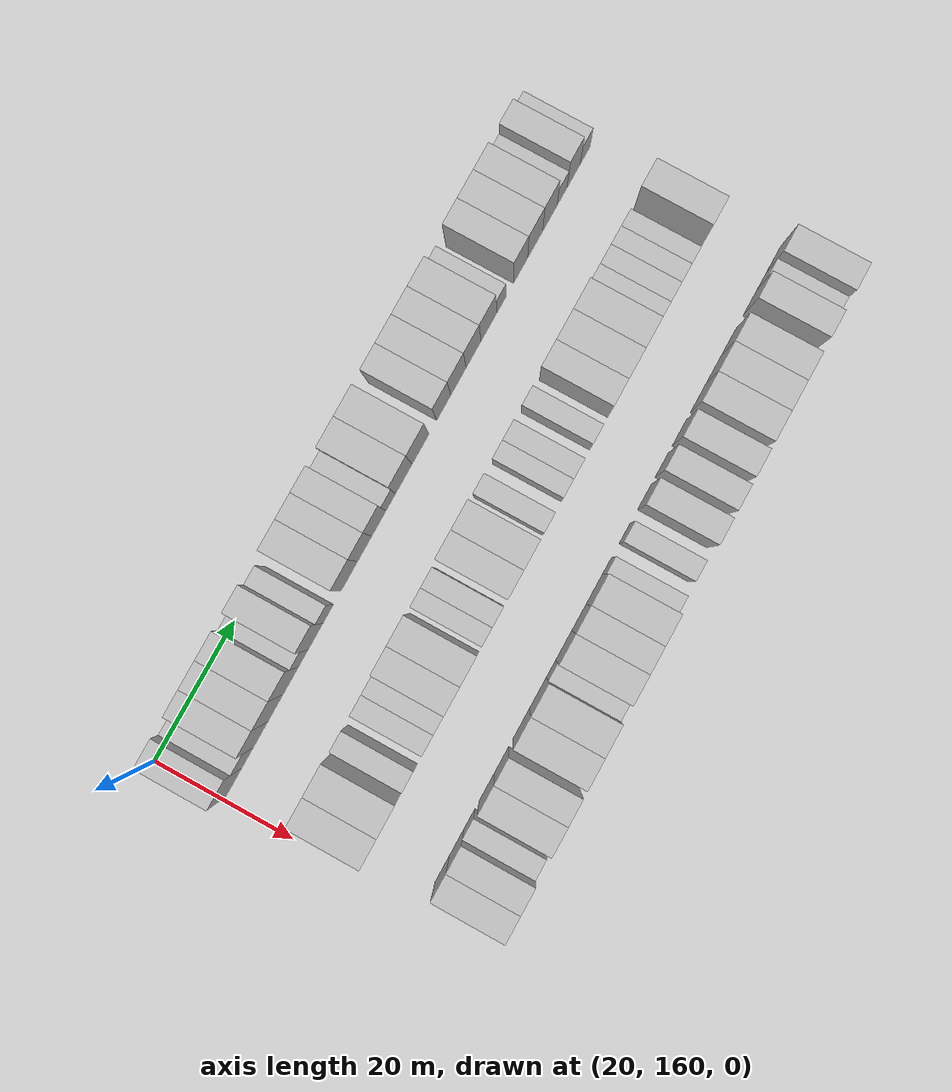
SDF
<sdf version="1.6">
 <world name="default">
  <model name="building_122">
   <static>1</static>
   <pose>25.0000 162.5644 0 0.000000 0.000000 0.000000</pose>
   <link name="link">
    <pose>0 0 4.50 0 0 0</pose>
    <collision name="collision"><geometry><box><size>10.0000 4.0477 9.0000</size></box></geometry></collision>
    <visual name="visual">
     <cast_shadows>0</cast_shadows>
     <geometry><box><size>10.0000 4.0477 9.0000</size></box></geometry>
     <material>
      <script>
       <uri>model://HANNAS_wall/materials/scripts</uri>
       <uri>model://HANNAS_wall/materials/textures</uri>
       <name>vrc/HANNAS_wall</name>
      </script>
     </material>
    </visual>
   </link>
  </model>
  <model name="building_123">
   <static>1</static>
   <pose>25.0000 166.0023 0 0.000000 0.000000 0.000000</pose>
   <link name="link">
    <pose>0 0 3.00 0 0 0</pose>
    <collision name="collision"><geometry><box><size>10.0000 2.8281 6.0000</size></box></geometry></collision>
    <visual name="visual">
     <cast_shadows>0</cast_shadows>
     <geometry><box><size>10.0000 2.8281 6.0000</size></box></geometry>
     <material>
      <script>
       <uri>model://HANNAS_wall/materials/scripts</uri>
       <uri>model://HANNAS_wall/materials/textures</uri>
       <name>vrc/HANNAS_wall</name>
      </script>
     </material>
    </visual>
   </link>
  </model>
  <model name="building_124">
   <static>1</static>
   <pose>25.0000 169.2462 0 0.000000 0.000000 0.000000</pose>
   <link name="link">
    <pose>0 0 4.50 0 0 0</pose>
    <collision name="collision"><geometry><box><size>10.0000 3.6597 9.0000</size></box></geometry></collision>
    <visual name="visual">
     <cast_shadows>0</cast_shadows>
     <geometry><box><size>10.0000 3.6597 9.0000</size></box></geometry>
     <material>
      <script>
       <uri>model://HANNAS_wall/materials/scripts</uri>
       <uri>model://HANNAS_wall/materials/textures</uri>
       <name>vrc/HANNAS_wall</name>
      </script>
     </material>
    </visual>
   </link>
  </model>
  <model name="building_125">
   <static>1</static>
   <pose>25.0000 173.0243 0 0.000000 0.000000 0.000000</pose>
   <link name="link">
    <pose>0 0 4.50 0 0 0</pose>
    <collision name="collision"><geometry><box><size>10.0000 3.8966 9.0000</size></box></geometry></collision>
    <visual name="visual">
     <cast_shadows>0</cast_shadows>
     <geometry><box><size>10.0000 3.8966 9.0000</size></box></geometry>
     <material>
      <script>
       <uri>model://HANNAS_wall/materials/scripts</uri>
       <uri>model://HANNAS_wall/materials/textures</uri>
       <name>vrc/HANNAS_wall</name>
      </script>
     </material>
    </visual>
   </link>
  </model>
  <model name="building_126">
   <static>1</static>
   <pose>25.0000 176.9497 0 0.000000 0.000000 0.000000</pose>
   <link name="link">
    <pose>0 0 4.50 0 0 0</pose>
    <collision name="collision"><geometry><box><size>10.0000 3.9542 9.0000</size></box></geometry></collision>
    <visual name="visual">
     <cast_shadows>0</cast_shadows>
     <geometry><box><size>10.0000 3.9542 9.0000</size></box></geometry>
     <material>
      <script>
       <uri>model://HANNAS_wall/materials/scripts</uri>
       <uri>model://HANNAS_wall/materials/textures</uri>
       <name>vrc/HANNAS_wall</name>
      </script>
     </material>
    </visual>
   </link>
  </model>
  <model name="building_127">
   <static>1</static>
   <pose>25.0000 180.1447 0 0.000000 0.000000 0.000000</pose>
   <link name="link">
    <pose>0 0 3.00 0 0 0</pose>
    <collision name="collision"><geometry><box><size>10.0000 2.4359 6.0000</size></box></geometry></collision>
    <visual name="visual">
     <cast_shadows>0</cast_shadows>
     <geometry><box><size>10.0000 2.4359 6.0000</size></box></geometry>
     <material>
      <script>
       <uri>model://HANNAS_wall/materials/scripts</uri>
       <uri>model://HANNAS_wall/materials/textures</uri>
       <name>vrc/HANNAS_wall</name>
      </script>
     </material>
    </visual>
   </link>
  </model>
  <model name="building_128">
   <static>1</static>
   <pose>25.0000 183.2692 0 0.000000 0.000000 0.000000</pose>
   <link name="link">
    <pose>0 0 4.50 0 0 0</pose>
    <collision name="collision"><geometry><box><size>10.0000 3.8131 9.0000</size></box></geometry></collision>
    <visual name="visual">
     <cast_shadows>0</cast_shadows>
     <geometry><box><size>10.0000 3.8131 9.0000</size></box></geometry>
     <material>
      <script>
       <uri>model://HANNAS_wall/materials/scripts</uri>
       <uri>model://HANNAS_wall/materials/textures</uri>
       <name>vrc/HANNAS_wall</name>
      </script>
     </material>
    </visual>
   </link>
  </model>
  <model name="building_129">
   <static>1</static>
   <pose>25.0000 186.5135 0 0.000000 0.000000 0.000000</pose>
   <link name="link">
    <pose>0 0 3.00 0 0 0</pose>
    <collision name="collision"><geometry><box><size>10.0000 2.6755 6.0000</size></box></geometry></collision>
    <visual name="visual">
     <cast_shadows>0</cast_shadows>
     <geometry><box><size>10.0000 2.6755 6.0000</size></box></geometry>
     <material>
      <script>
       <uri>model://HANNAS_wall/materials/scripts</uri>
       <uri>model://HANNAS_wall/materials/textures</uri>
       <name>vrc/HANNAS_wall</name>
      </script>
     </material>
    </visual>
   </link>
  </model>
  <model name="building_130">
   <static>1</static>
   <pose>25.0000 191.9704 0 0.000000 0.000000 0.000000</pose>
   <link name="link">
    <pose>0 0 4.50 0 0 0</pose>
    <collision name="collision"><geometry><box><size>10.0000 4.2382 9.0000</size></box></geometry></collision>
    <visual name="visual">
     <cast_shadows>0</cast_shadows>
     <geometry><box><size>10.0000 4.2382 9.0000</size></box></geometry>
     <material>
      <script>
       <uri>model://HANNAS_wall/materials/scripts</uri>
       <uri>model://HANNAS_wall/materials/textures</uri>
       <name>vrc/HANNAS_wall</name>
      </script>
     </material>
    </visual>
   </link>
  </model>
  <model name="building_131">
   <static>1</static>
   <pose>25.0000 195.9133 0 0.000000 0.000000 0.000000</pose>
   <link name="link">
    <pose>0 0 4.50 0 0 0</pose>
    <collision name="collision"><geometry><box><size>10.0000 3.6477 9.0000</size></box></geometry></collision>
    <visual name="visual">
     <cast_shadows>0</cast_shadows>
     <geometry><box><size>10.0000 3.6477 9.0000</size></box></geometry>
     <material>
      <script>
       <uri>model://HANNAS_wall/materials/scripts</uri>
       <uri>model://HANNAS_wall/materials/textures</uri>
       <name>vrc/HANNAS_wall</name>
      </script>
     </material>
    </visual>
   </link>
  </model>
  <model name="building_132">
   <static>1</static>
   <pose>25.0000 199.5821 0 0.000000 0.000000 0.000000</pose>
   <link name="link">
    <pose>0 0 4.50 0 0 0</pose>
    <collision name="collision"><geometry><box><size>10.0000 3.6898 9.0000</size></box></geometry></collision>
    <visual name="visual">
     <cast_shadows>0</cast_shadows>
     <geometry><box><size>10.0000 3.6898 9.0000</size></box></geometry>
     <material>
      <script>
       <uri>model://HANNAS_wall/materials/scripts</uri>
       <uri>model://HANNAS_wall/materials/textures</uri>
       <name>vrc/HANNAS_wall</name>
      </script>
     </material>
    </visual>
   </link>
  </model>
  <model name="building_133">
   <static>1</static>
   <pose>25.0000 202.6711 0 0.000000 0.000000 0.000000</pose>
   <link name="link">
    <pose>0 0 3.00 0 0 0</pose>
    <collision name="collision"><geometry><box><size>10.0000 2.4883 6.0000</size></box></geometry></collision>
    <visual name="visual">
     <cast_shadows>0</cast_shadows>
     <geometry><box><size>10.0000 2.4883 6.0000</size></box></geometry>
     <material>
      <script>
       <uri>model://HANNAS_wall/materials/scripts</uri>
       <uri>model://HANNAS_wall/materials/textures</uri>
       <name>vrc/HANNAS_wall</name>
      </script>
     </material>
    </visual>
   </link>
  </model>
  <model name="building_134">
   <static>1</static>
   <pose>25.0000 206.0773 0 0.000000 0.000000 0.000000</pose>
   <link name="link">
    <pose>0 0 4.50 0 0 0</pose>
    <collision name="collision"><geometry><box><size>10.0000 4.3241 9.0000</size></box></geometry></collision>
    <visual name="visual">
     <cast_shadows>0</cast_shadows>
     <geometry><box><size>10.0000 4.3241 9.0000</size></box></geometry>
     <material>
      <script>
       <uri>model://HANNAS_wall/materials/scripts</uri>
       <uri>model://HANNAS_wall/materials/textures</uri>
       <name>vrc/HANNAS_wall</name>
      </script>
     </material>
    </visual>
   </link>
  </model>
  <model name="building_135">
   <static>1</static>
   <pose>25.0000 210.4620 0 0.000000 0.000000 0.000000</pose>
   <link name="link">
    <pose>0 0 4.50 0 0 0</pose>
    <collision name="collision"><geometry><box><size>10.0000 4.4454 9.0000</size></box></geometry></collision>
    <visual name="visual">
     <cast_shadows>0</cast_shadows>
     <geometry><box><size>10.0000 4.4454 9.0000</size></box></geometry>
     <material>
      <script>
       <uri>model://HANNAS_wall/materials/scripts</uri>
       <uri>model://HANNAS_wall/materials/textures</uri>
       <name>vrc/HANNAS_wall</name>
      </script>
     </material>
    </visual>
   </link>
  </model>
  <model name="building_136">
   <static>1</static>
   <pose>25.0000 216.5590 0 0.000000 0.000000 0.000000</pose>
   <link name="link">
    <pose>0 0 4.50 0 0 0</pose>
    <collision name="collision"><geometry><box><size>10.0000 3.7486 9.0000</size></box></geometry></collision>
    <visual name="visual">
     <cast_shadows>0</cast_shadows>
     <geometry><box><size>10.0000 3.7486 9.0000</size></box></geometry>
     <material>
      <script>
       <uri>model://HANNAS_wall/materials/scripts</uri>
       <uri>model://HANNAS_wall/materials/textures</uri>
       <name>vrc/HANNAS_wall</name>
      </script>
     </material>
    </visual>
   </link>
  </model>
  <model name="building_137">
   <static>1</static>
   <pose>25.0000 220.4509 0 0.000000 0.000000 0.000000</pose>
   <link name="link">
    <pose>0 0 4.50 0 0 0</pose>
    <collision name="collision"><geometry><box><size>10.0000 4.0350 9.0000</size></box></geometry></collision>
    <visual name="visual">
     <cast_shadows>0</cast_shadows>
     <geometry><box><size>10.0000 4.0350 9.0000</size></box></geometry>
     <material>
      <script>
       <uri>model://HANNAS_wall/materials/scripts</uri>
       <uri>model://HANNAS_wall/materials/textures</uri>
       <name>vrc/HANNAS_wall</name>
      </script>
     </material>
    </visual>
   </link>
  </model>
  <model name="building_138">
   <static>1</static>
   <pose>25.0000 224.4323 0 0.000000 0.000000 0.000000</pose>
   <link name="link">
    <pose>0 0 4.50 0 0 0</pose>
    <collision name="collision"><geometry><box><size>10.0000 3.9277 9.0000</size></box></geometry></collision>
    <visual name="visual">
     <cast_shadows>0</cast_shadows>
     <geometry><box><size>10.0000 3.9277 9.0000</size></box></geometry>
     <material>
      <script>
       <uri>model://HANNAS_wall/materials/scripts</uri>
       <uri>model://HANNAS_wall/materials/textures</uri>
       <name>vrc/HANNAS_wall</name>
      </script>
     </material>
    </visual>
   </link>
  </model>
  <model name="building_139">
   <static>1</static>
   <pose>25.0000 228.5073 0 0.000000 0.000000 0.000000</pose>
   <link name="link">
    <pose>0 0 4.50 0 0 0</pose>
    <collision name="collision"><geometry><box><size>10.0000 4.2223 9.0000</size></box></geometry></collision>
    <visual name="visual">
     <cast_shadows>0</cast_shadows>
     <geometry><box><size>10.0000 4.2223 9.0000</size></box></geometry>
     <material>
      <script>
       <uri>model://HANNAS_wall/materials/scripts</uri>
       <uri>model://HANNAS_wall/materials/textures</uri>
       <name>vrc/HANNAS_wall</name>
      </script>
     </material>
    </visual>
   </link>
  </model>
  <model name="building_140">
   <static>1</static>
   <pose>25.0000 231.8715 0 0.000000 0.000000 0.000000</pose>
   <link name="link">
    <pose>0 0 3.00 0 0 0</pose>
    <collision name="collision"><geometry><box><size>10.0000 2.5061 6.0000</size></box></geometry></collision>
    <visual name="visual">
     <cast_shadows>0</cast_shadows>
     <geometry><box><size>10.0000 2.5061 6.0000</size></box></geometry>
     <material>
      <script>
       <uri>model://HANNAS_wall/materials/scripts</uri>
       <uri>model://HANNAS_wall/materials/textures</uri>
       <name>vrc/HANNAS_wall</name>
      </script>
     </material>
    </visual>
   </link>
  </model>
  <model name="building_141">
   <static>1</static>
   <pose>25.0000 237.0050 0 0.000000 0.000000 0.000000</pose>
   <link name="link">
    <pose>0 0 4.50 0 0 0</pose>
    <collision name="collision"><geometry><box><size>10.0000 3.7610 9.0000</size></box></geometry></collision>
    <visual name="visual">
     <cast_shadows>0</cast_shadows>
     <geometry><box><size>10.0000 3.7610 9.0000</size></box></geometry>
     <material>
      <script>
       <uri>model://HANNAS_wall/materials/scripts</uri>
       <uri>model://HANNAS_wall/materials/textures</uri>
       <name>vrc/HANNAS_wall</name>
      </script>
     </material>
    </visual>
   </link>
  </model>
  <model name="building_142">
   <static>1</static>
   <pose>25.0000 240.9194 0 0.000000 0.000000 0.000000</pose>
   <link name="link">
    <pose>0 0 4.50 0 0 0</pose>
    <collision name="collision"><geometry><box><size>10.0000 4.0678 9.0000</size></box></geometry></collision>
    <visual name="visual">
     <cast_shadows>0</cast_shadows>
     <geometry><box><size>10.0000 4.0678 9.0000</size></box></geometry>
     <material>
      <script>
       <uri>model://HANNAS_wall/materials/scripts</uri>
       <uri>model://HANNAS_wall/materials/textures</uri>
       <name>vrc/HANNAS_wall</name>
      </script>
     </material>
    </visual>
   </link>
  </model>
  <model name="building_143">
   <static>1</static>
   <pose>25.0000 244.8892 0 0.000000 0.000000 0.000000</pose>
   <link name="link">
    <pose>0 0 4.50 0 0 0</pose>
    <collision name="collision"><geometry><box><size>10.0000 3.8719 9.0000</size></box></geometry></collision>
    <visual name="visual">
     <cast_shadows>0</cast_shadows>
     <geometry><box><size>10.0000 3.8719 9.0000</size></box></geometry>
     <material>
      <script>
       <uri>model://HANNAS_wall/materials/scripts</uri>
       <uri>model://HANNAS_wall/materials/textures</uri>
       <name>vrc/HANNAS_wall</name>
      </script>
     </material>
    </visual>
   </link>
  </model>
  <model name="building_144">
   <static>1</static>
   <pose>25.0000 248.1427 0 0.000000 0.000000 0.000000</pose>
   <link name="link">
    <pose>0 0 3.00 0 0 0</pose>
    <collision name="collision"><geometry><box><size>10.0000 2.6350 6.0000</size></box></geometry></collision>
    <visual name="visual">
     <cast_shadows>0</cast_shadows>
     <geometry><box><size>10.0000 2.6350 6.0000</size></box></geometry>
     <material>
      <script>
       <uri>model://HANNAS_wall/materials/scripts</uri>
       <uri>model://HANNAS_wall/materials/textures</uri>
       <name>vrc/HANNAS_wall</name>
      </script>
     </material>
    </visual>
   </link>
  </model>
  <model name="building_145">
   <static>1</static>
   <pose>25.0000 251.2728 0 0.000000 0.000000 0.000000</pose>
   <link name="link">
    <pose>0 0 4.50 0 0 0</pose>
    <collision name="collision"><geometry><box><size>10.0000 3.6251 9.0000</size></box></geometry></collision>
    <visual name="visual">
     <cast_shadows>0</cast_shadows>
     <geometry><box><size>10.0000 3.6251 9.0000</size></box></geometry>
     <material>
      <script>
       <uri>model://HANNAS_wall/materials/scripts</uri>
       <uri>model://HANNAS_wall/materials/textures</uri>
       <name>vrc/HANNAS_wall</name>
      </script>
     </material>
    </visual>
   </link>
  </model>
  <model name="building_146">
   <static>1</static>
   <pose>25.0000 254.4373 0 0.000000 0.000000 0.000000</pose>
   <link name="link">
    <pose>0 0 3.00 0 0 0</pose>
    <collision name="collision"><geometry><box><size>10.0000 2.7040 6.0000</size></box></geometry></collision>
    <visual name="visual">
     <cast_shadows>0</cast_shadows>
     <geometry><box><size>10.0000 2.7040 6.0000</size></box></geometry>
     <material>
      <script>
       <uri>model://HANNAS_wall/materials/scripts</uri>
       <uri>model://HANNAS_wall/materials/textures</uri>
       <name>vrc/HANNAS_wall</name>
      </script>
     </material>
    </visual>
   </link>
  </model>
  <model name="building_294">
   <static>1</static>
   <pose>44.0000 165.2141 0 0.000000 0.000000 0.000000</pose>
   <link name="link">
    <pose>0 0 4.50 0 0 0</pose>
    <collision name="collision"><geometry><box><size>10.0000 4.1147 9.0000</size></box></geometry></collision>
    <visual name="visual">
     <cast_shadows>0</cast_shadows>
     <geometry><box><size>10.0000 4.1147 9.0000</size></box></geometry>
     <material>
      <script>
       <uri>model://HANNAS_wall/materials/scripts</uri>
       <uri>model://HANNAS_wall/materials/textures</uri>
       <name>vrc/HANNAS_wall</name>
      </script>
     </material>
    </visual>
   </link>
  </model>
  <model name="building_295">
   <static>1</static>
   <pose>44.0000 169.4779 0 0.000000 0.000000 0.000000</pose>
   <link name="link">
    <pose>0 0 4.50 0 0 0</pose>
    <collision name="collision"><geometry><box><size>10.0000 4.4129 9.0000</size></box></geometry></collision>
    <visual name="visual">
     <cast_shadows>0</cast_shadows>
     <geometry><box><size>10.0000 4.4129 9.0000</size></box></geometry>
     <material>
      <script>
       <uri>model://HANNAS_wall/materials/scripts</uri>
       <uri>model://HANNAS_wall/materials/textures</uri>
       <name>vrc/HANNAS_wall</name>
      </script>
     </material>
    </visual>
   </link>
  </model>
  <model name="building_296">
   <static>1</static>
   <pose>44.0000 174.1493 0 0.000000 0.000000 0.000000</pose>
   <link name="link">
    <pose>0 0 3.00 0 0 0</pose>
    <collision name="collision"><geometry><box><size>10.0000 2.9297 6.0000</size></box></geometry></collision>
    <visual name="visual">
     <cast_shadows>0</cast_shadows>
     <geometry><box><size>10.0000 2.9297 6.0000</size></box></geometry>
     <material>
      <script>
       <uri>model://HANNAS_wall/materials/scripts</uri>
       <uri>model://HANNAS_wall/materials/textures</uri>
       <name>vrc/HANNAS_wall</name>
      </script>
     </material>
    </visual>
   </link>
  </model>
  <model name="building_297">
   <static>1</static>
   <pose>44.0000 179.0630 0 0.000000 0.000000 0.000000</pose>
   <link name="link">
    <pose>0 0 3.00 0 0 0</pose>
    <collision name="collision"><geometry><box><size>10.0000 2.8978 6.0000</size></box></geometry></collision>
    <visual name="visual">
     <cast_shadows>0</cast_shadows>
     <geometry><box><size>10.0000 2.8978 6.0000</size></box></geometry>
     <material>
      <script>
       <uri>model://HANNAS_wall/materials/scripts</uri>
       <uri>model://HANNAS_wall/materials/textures</uri>
       <name>vrc/HANNAS_wall</name>
      </script>
     </material>
    </visual>
   </link>
  </model>
  <model name="building_298">
   <static>1</static>
   <pose>44.0000 181.9744 0 0.000000 0.000000 0.000000</pose>
   <link name="link">
    <pose>0 0 3.00 0 0 0</pose>
    <collision name="collision"><geometry><box><size>10.0000 2.9251 6.0000</size></box></geometry></collision>
    <visual name="visual">
     <cast_shadows>0</cast_shadows>
     <geometry><box><size>10.0000 2.9251 6.0000</size></box></geometry>
     <material>
      <script>
       <uri>model://HANNAS_wall/materials/scripts</uri>
       <uri>model://HANNAS_wall/materials/textures</uri>
       <name>vrc/HANNAS_wall</name>
      </script>
     </material>
    </visual>
   </link>
  </model>
  <model name="building_299">
   <static>1</static>
   <pose>44.0000 185.4060 0 0.000000 0.000000 0.000000</pose>
   <link name="link">
    <pose>0 0 4.50 0 0 0</pose>
    <collision name="collision"><geometry><box><size>10.0000 3.9381 9.0000</size></box></geometry></collision>
    <visual name="visual">
     <cast_shadows>0</cast_shadows>
     <geometry><box><size>10.0000 3.9381 9.0000</size></box></geometry>
     <material>
      <script>
       <uri>model://HANNAS_wall/materials/scripts</uri>
       <uri>model://HANNAS_wall/materials/textures</uri>
       <name>vrc/HANNAS_wall</name>
      </script>
     </material>
    </visual>
   </link>
  </model>
  <model name="building_300">
   <static>1</static>
   <pose>44.0000 189.4627 0 0.000000 0.000000 0.000000</pose>
   <link name="link">
    <pose>0 0 4.50 0 0 0</pose>
    <collision name="collision"><geometry><box><size>10.0000 4.1751 9.0000</size></box></geometry></collision>
    <visual name="visual">
     <cast_shadows>0</cast_shadows>
     <geometry><box><size>10.0000 4.1751 9.0000</size></box></geometry>
     <material>
      <script>
       <uri>model://HANNAS_wall/materials/scripts</uri>
       <uri>model://HANNAS_wall/materials/textures</uri>
       <name>vrc/HANNAS_wall</name>
      </script>
     </material>
    </visual>
   </link>
  </model>
  <model name="building_301">
   <static>1</static>
   <pose>44.0000 193.8861 0 0.000000 0.000000 0.000000</pose>
   <link name="link">
    <pose>0 0 3.00 0 0 0</pose>
    <collision name="collision"><geometry><box><size>10.0000 2.6716 6.0000</size></box></geometry></collision>
    <visual name="visual">
     <cast_shadows>0</cast_shadows>
     <geometry><box><size>10.0000 2.6716 6.0000</size></box></geometry>
     <material>
      <script>
       <uri>model://HANNAS_wall/materials/scripts</uri>
       <uri>model://HANNAS_wall/materials/textures</uri>
       <name>vrc/HANNAS_wall</name>
      </script>
     </material>
    </visual>
   </link>
  </model>
  <model name="building_302">
   <static>1</static>
   <pose>44.0000 196.6618 0 0.000000 0.000000 0.000000</pose>
   <link name="link">
    <pose>0 0 3.00 0 0 0</pose>
    <collision name="collision"><geometry><box><size>10.0000 2.8798 6.0000</size></box></geometry></collision>
    <visual name="visual">
     <cast_shadows>0</cast_shadows>
     <geometry><box><size>10.0000 2.8798 6.0000</size></box></geometry>
     <material>
      <script>
       <uri>model://HANNAS_wall/materials/scripts</uri>
       <uri>model://HANNAS_wall/materials/textures</uri>
       <name>vrc/HANNAS_wall</name>
      </script>
     </material>
    </visual>
   </link>
  </model>
  <model name="building_303">
   <static>1</static>
   <pose>44.0000 201.1079 0 0.000000 0.000000 0.000000</pose>
   <link name="link">
    <pose>0 0 4.50 0 0 0</pose>
    <collision name="collision"><geometry><box><size>10.0000 4.0124 9.0000</size></box></geometry></collision>
    <visual name="visual">
     <cast_shadows>0</cast_shadows>
     <geometry><box><size>10.0000 4.0124 9.0000</size></box></geometry>
     <material>
      <script>
       <uri>model://HANNAS_wall/materials/scripts</uri>
       <uri>model://HANNAS_wall/materials/textures</uri>
       <name>vrc/HANNAS_wall</name>
      </script>
     </material>
    </visual>
   </link>
  </model>
  <model name="building_304">
   <static>1</static>
   <pose>44.0000 205.2079 0 0.000000 0.000000 0.000000</pose>
   <link name="link">
    <pose>0 0 4.50 0 0 0</pose>
    <collision name="collision"><geometry><box><size>10.0000 4.1876 9.0000</size></box></geometry></collision>
    <visual name="visual">
     <cast_shadows>0</cast_shadows>
     <geometry><box><size>10.0000 4.1876 9.0000</size></box></geometry>
     <material>
      <script>
       <uri>model://HANNAS_wall/materials/scripts</uri>
       <uri>model://HANNAS_wall/materials/textures</uri>
       <name>vrc/HANNAS_wall</name>
      </script>
     </material>
    </visual>
   </link>
  </model>
  <model name="building_305">
   <static>1</static>
   <pose>44.0000 209.7599 0 0.000000 0.000000 0.000000</pose>
   <link name="link">
    <pose>0 0 3.00 0 0 0</pose>
    <collision name="collision"><geometry><box><size>10.0000 2.9164 6.0000</size></box></geometry></collision>
    <visual name="visual">
     <cast_shadows>0</cast_shadows>
     <geometry><box><size>10.0000 2.9164 6.0000</size></box></geometry>
     <material>
      <script>
       <uri>model://HANNAS_wall/materials/scripts</uri>
       <uri>model://HANNAS_wall/materials/textures</uri>
       <name>vrc/HANNAS_wall</name>
      </script>
     </material>
    </visual>
   </link>
  </model>
  <model name="building_306">
   <static>1</static>
   <pose>44.0000 214.5501 0 0.000000 0.000000 0.000000</pose>
   <link name="link">
    <pose>0 0 3.00 0 0 0</pose>
    <collision name="collision"><geometry><box><size>10.0000 2.6641 6.0000</size></box></geometry></collision>
    <visual name="visual">
     <cast_shadows>0</cast_shadows>
     <geometry><box><size>10.0000 2.6641 6.0000</size></box></geometry>
     <material>
      <script>
       <uri>model://HANNAS_wall/materials/scripts</uri>
       <uri>model://HANNAS_wall/materials/textures</uri>
       <name>vrc/HANNAS_wall</name>
      </script>
     </material>
    </visual>
   </link>
  </model>
  <model name="building_307">
   <static>1</static>
   <pose>44.0000 217.3388 0 0.000000 0.000000 0.000000</pose>
   <link name="link">
    <pose>0 0 3.00 0 0 0</pose>
    <collision name="collision"><geometry><box><size>10.0000 2.9133 6.0000</size></box></geometry></collision>
    <visual name="visual">
     <cast_shadows>0</cast_shadows>
     <geometry><box><size>10.0000 2.9133 6.0000</size></box></geometry>
     <material>
      <script>
       <uri>model://HANNAS_wall/materials/scripts</uri>
       <uri>model://HANNAS_wall/materials/textures</uri>
       <name>vrc/HANNAS_wall</name>
      </script>
     </material>
    </visual>
   </link>
  </model>
  <model name="building_308">
   <static>1</static>
   <pose>44.0000 222.1961 0 0.000000 0.000000 0.000000</pose>
   <link name="link">
    <pose>0 0 3.00 0 0 0</pose>
    <collision name="collision"><geometry><box><size>10.0000 2.8013 6.0000</size></box></geometry></collision>
    <visual name="visual">
     <cast_shadows>0</cast_shadows>
     <geometry><box><size>10.0000 2.8013 6.0000</size></box></geometry>
     <material>
      <script>
       <uri>model://HANNAS_wall/materials/scripts</uri>
       <uri>model://HANNAS_wall/materials/textures</uri>
       <name>vrc/HANNAS_wall</name>
      </script>
     </material>
    </visual>
   </link>
  </model>
  <model name="building_309">
   <static>1</static>
   <pose>44.0000 227.5003 0 0.000000 0.000000 0.000000</pose>
   <link name="link">
    <pose>0 0 4.50 0 0 0</pose>
    <collision name="collision"><geometry><box><size>10.0000 3.8072 9.0000</size></box></geometry></collision>
    <visual name="visual">
     <cast_shadows>0</cast_shadows>
     <geometry><box><size>10.0000 3.8072 9.0000</size></box></geometry>
     <material>
      <script>
       <uri>model://HANNAS_wall/materials/scripts</uri>
       <uri>model://HANNAS_wall/materials/textures</uri>
       <name>vrc/HANNAS_wall</name>
      </script>
     </material>
    </visual>
   </link>
  </model>
  <model name="building_310">
   <static>1</static>
   <pose>44.0000 231.5587 0 0.000000 0.000000 0.000000</pose>
   <link name="link">
    <pose>0 0 4.50 0 0 0</pose>
    <collision name="collision"><geometry><box><size>10.0000 4.3096 9.0000</size></box></geometry></collision>
    <visual name="visual">
     <cast_shadows>0</cast_shadows>
     <geometry><box><size>10.0000 4.3096 9.0000</size></box></geometry>
     <material>
      <script>
       <uri>model://HANNAS_wall/materials/scripts</uri>
       <uri>model://HANNAS_wall/materials/textures</uri>
       <name>vrc/HANNAS_wall</name>
      </script>
     </material>
    </visual>
   </link>
  </model>
  <model name="building_311">
   <static>1</static>
   <pose>44.0000 235.8944 0 0.000000 0.000000 0.000000</pose>
   <link name="link">
    <pose>0 0 4.50 0 0 0</pose>
    <collision name="collision"><geometry><box><size>10.0000 4.3618 9.0000</size></box></geometry></collision>
    <visual name="visual">
     <cast_shadows>0</cast_shadows>
     <geometry><box><size>10.0000 4.3618 9.0000</size></box></geometry>
     <material>
      <script>
       <uri>model://HANNAS_wall/materials/scripts</uri>
       <uri>model://HANNAS_wall/materials/textures</uri>
       <name>vrc/HANNAS_wall</name>
      </script>
     </material>
    </visual>
   </link>
  </model>
  <model name="building_312">
   <static>1</static>
   <pose>44.0000 239.5666 0 0.000000 0.000000 0.000000</pose>
   <link name="link">
    <pose>0 0 3.00 0 0 0</pose>
    <collision name="collision"><geometry><box><size>10.0000 2.9827 6.0000</size></box></geometry></collision>
    <visual name="visual">
     <cast_shadows>0</cast_shadows>
     <geometry><box><size>10.0000 2.9827 6.0000</size></box></geometry>
     <material>
      <script>
       <uri>model://HANNAS_wall/materials/scripts</uri>
       <uri>model://HANNAS_wall/materials/textures</uri>
       <name>vrc/HANNAS_wall</name>
      </script>
     </material>
    </visual>
   </link>
  </model>
  <model name="building_313">
   <static>1</static>
   <pose>44.0000 242.4702 0 0.000000 0.000000 0.000000</pose>
   <link name="link">
    <pose>0 0 3.00 0 0 0</pose>
    <collision name="collision"><geometry><box><size>10.0000 2.8244 6.0000</size></box></geometry></collision>
    <visual name="visual">
     <cast_shadows>0</cast_shadows>
     <geometry><box><size>10.0000 2.8244 6.0000</size></box></geometry>
     <material>
      <script>
       <uri>model://HANNAS_wall/materials/scripts</uri>
       <uri>model://HANNAS_wall/materials/textures</uri>
       <name>vrc/HANNAS_wall</name>
      </script>
     </material>
    </visual>
   </link>
  </model>
  <model name="building_314">
   <static>1</static>
   <pose>44.0000 245.2098 0 0.000000 0.000000 0.000000</pose>
   <link name="link">
    <pose>0 0 3.00 0 0 0</pose>
    <collision name="collision"><geometry><box><size>10.0000 2.6549 6.0000</size></box></geometry></collision>
    <visual name="visual">
     <cast_shadows>0</cast_shadows>
     <geometry><box><size>10.0000 2.6549 6.0000</size></box></geometry>
     <material>
      <script>
       <uri>model://HANNAS_wall/materials/scripts</uri>
       <uri>model://HANNAS_wall/materials/textures</uri>
       <name>vrc/HANNAS_wall</name>
      </script>
     </material>
    </visual>
   </link>
  </model>
  <model name="building_315">
   <static>1</static>
   <pose>44.0000 247.7733 0 0.000000 0.000000 0.000000</pose>
   <link name="link">
    <pose>0 0 3.00 0 0 0</pose>
    <collision name="collision"><geometry><box><size>10.0000 2.4720 6.0000</size></box></geometry></collision>
    <visual name="visual">
     <cast_shadows>0</cast_shadows>
     <geometry><box><size>10.0000 2.4720 6.0000</size></box></geometry>
     <material>
      <script>
       <uri>model://HANNAS_wall/materials/scripts</uri>
       <uri>model://HANNAS_wall/materials/textures</uri>
       <name>vrc/HANNAS_wall</name>
      </script>
     </material>
    </visual>
   </link>
  </model>
  <model name="building_316">
   <static>1</static>
   <pose>44.0000 253.0367 0 0.000000 0.000000 0.000000</pose>
   <link name="link">
    <pose>0 0 4.50 0 0 0</pose>
    <collision name="collision"><geometry><box><size>10.0000 4.0550 9.0000</size></box></geometry></collision>
    <visual name="visual">
     <cast_shadows>0</cast_shadows>
     <geometry><box><size>10.0000 4.0550 9.0000</size></box></geometry>
     <material>
      <script>
       <uri>model://HANNAS_wall/materials/scripts</uri>
       <uri>model://HANNAS_wall/materials/textures</uri>
       <name>vrc/HANNAS_wall</name>
      </script>
     </material>
    </visual>
   </link>
  </model>
  <model name="building_477">
   <static>1</static>
   <pose>63.0000 165.8572 0 0.000000 0.000000 0.000000</pose>
   <link name="link">
    <pose>0 0 4.50 0 0 0</pose>
    <collision name="collision"><geometry><box><size>10.0000 3.7349 9.0000</size></box></geometry></collision>
    <visual name="visual">
     <cast_shadows>0</cast_shadows>
     <geometry><box><size>10.0000 3.7349 9.0000</size></box></geometry>
     <material>
      <script>
       <uri>model://HANNAS_wall/materials/scripts</uri>
       <uri>model://HANNAS_wall/materials/textures</uri>
       <name>vrc/HANNAS_wall</name>
      </script>
     </material>
    </visual>
   </link>
  </model>
  <model name="building_478">
   <static>1</static>
   <pose>63.0000 169.5671 0 0.000000 0.000000 0.000000</pose>
   <link name="link">
    <pose>0 0 4.50 0 0 0</pose>
    <collision name="collision"><geometry><box><size>10.0000 3.6849 9.0000</size></box></geometry></collision>
    <visual name="visual">
     <cast_shadows>0</cast_shadows>
     <geometry><box><size>10.0000 3.6849 9.0000</size></box></geometry>
     <material>
      <script>
       <uri>model://HANNAS_wall/materials/scripts</uri>
       <uri>model://HANNAS_wall/materials/textures</uri>
       <name>vrc/HANNAS_wall</name>
      </script>
     </material>
    </visual>
   </link>
  </model>
  <model name="building_479">
   <static>1</static>
   <pose>63.0000 172.8339 0 0.000000 0.000000 0.000000</pose>
   <link name="link">
    <pose>0 0 3.00 0 0 0</pose>
    <collision name="collision"><geometry><box><size>10.0000 2.8489 6.0000</size></box></geometry></collision>
    <visual name="visual">
     <cast_shadows>0</cast_shadows>
     <geometry><box><size>10.0000 2.8489 6.0000</size></box></geometry>
     <material>
      <script>
       <uri>model://HANNAS_wall/materials/scripts</uri>
       <uri>model://HANNAS_wall/materials/textures</uri>
       <name>vrc/HANNAS_wall</name>
      </script>
     </material>
    </visual>
   </link>
  </model>
  <model name="building_480">
   <static>1</static>
   <pose>63.0000 177.2797 0 0.000000 0.000000 0.000000</pose>
   <link name="link">
    <pose>0 0 4.50 0 0 0</pose>
    <collision name="collision"><geometry><box><size>10.0000 4.0426 9.0000</size></box></geometry></collision>
    <visual name="visual">
     <cast_shadows>0</cast_shadows>
     <geometry><box><size>10.0000 4.0426 9.0000</size></box></geometry>
     <material>
      <script>
       <uri>model://HANNAS_wall/materials/scripts</uri>
       <uri>model://HANNAS_wall/materials/textures</uri>
       <name>vrc/HANNAS_wall</name>
      </script>
     </material>
    </visual>
   </link>
  </model>
  <model name="building_481">
   <static>1</static>
   <pose>63.0000 181.1511 0 0.000000 0.000000 0.000000</pose>
   <link name="link">
    <pose>0 0 4.50 0 0 0</pose>
    <collision name="collision"><geometry><box><size>10.0000 3.7003 9.0000</size></box></geometry></collision>
    <visual name="visual">
     <cast_shadows>0</cast_shadows>
     <geometry><box><size>10.0000 3.7003 9.0000</size></box></geometry>
     <material>
      <script>
       <uri>model://HANNAS_wall/materials/scripts</uri>
       <uri>model://HANNAS_wall/materials/textures</uri>
       <name>vrc/HANNAS_wall</name>
      </script>
     </material>
    </visual>
   </link>
  </model>
  <model name="building_482">
   <static>1</static>
   <pose>63.0000 186.1853 0 0.000000 0.000000 0.000000</pose>
   <link name="link">
    <pose>0 0 4.50 0 0 0</pose>
    <collision name="collision"><geometry><box><size>10.0000 4.3681 9.0000</size></box></geometry></collision>
    <visual name="visual">
     <cast_shadows>0</cast_shadows>
     <geometry><box><size>10.0000 4.3681 9.0000</size></box></geometry>
     <material>
      <script>
       <uri>model://HANNAS_wall/materials/scripts</uri>
       <uri>model://HANNAS_wall/materials/textures</uri>
       <name>vrc/HANNAS_wall</name>
      </script>
     </material>
    </visual>
   </link>
  </model>
  <model name="building_483">
   <static>1</static>
   <pose>63.0000 190.6072 0 0.000000 0.000000 0.000000</pose>
   <link name="link">
    <pose>0 0 4.50 0 0 0</pose>
    <collision name="collision"><geometry><box><size>10.0000 4.4756 9.0000</size></box></geometry></collision>
    <visual name="visual">
     <cast_shadows>0</cast_shadows>
     <geometry><box><size>10.0000 4.4756 9.0000</size></box></geometry>
     <material>
      <script>
       <uri>model://HANNAS_wall/materials/scripts</uri>
       <uri>model://HANNAS_wall/materials/textures</uri>
       <name>vrc/HANNAS_wall</name>
      </script>
     </material>
    </visual>
   </link>
  </model>
  <model name="building_484">
   <static>1</static>
   <pose>63.0000 194.0667 0 0.000000 0.000000 0.000000</pose>
   <link name="link">
    <pose>0 0 3.00 0 0 0</pose>
    <collision name="collision"><geometry><box><size>10.0000 2.4434 6.0000</size></box></geometry></collision>
    <visual name="visual">
     <cast_shadows>0</cast_shadows>
     <geometry><box><size>10.0000 2.4434 6.0000</size></box></geometry>
     <material>
      <script>
       <uri>model://HANNAS_wall/materials/scripts</uri>
       <uri>model://HANNAS_wall/materials/textures</uri>
       <name>vrc/HANNAS_wall</name>
      </script>
     </material>
    </visual>
   </link>
  </model>
  <model name="building_485">
   <static>1</static>
   <pose>63.0000 197.3970 0 0.000000 0.000000 0.000000</pose>
   <link name="link">
    <pose>0 0 4.50 0 0 0</pose>
    <collision name="collision"><geometry><box><size>10.0000 4.2172 9.0000</size></box></geometry></collision>
    <visual name="visual">
     <cast_shadows>0</cast_shadows>
     <geometry><box><size>10.0000 4.2172 9.0000</size></box></geometry>
     <material>
      <script>
       <uri>model://HANNAS_wall/materials/scripts</uri>
       <uri>model://HANNAS_wall/materials/textures</uri>
       <name>vrc/HANNAS_wall</name>
      </script>
     </material>
    </visual>
   </link>
  </model>
  <model name="building_486">
   <static>1</static>
   <pose>63.0000 201.4078 0 0.000000 0.000000 0.000000</pose>
   <link name="link">
    <pose>0 0 4.50 0 0 0</pose>
    <collision name="collision"><geometry><box><size>10.0000 3.8043 9.0000</size></box></geometry></collision>
    <visual name="visual">
     <cast_shadows>0</cast_shadows>
     <geometry><box><size>10.0000 3.8043 9.0000</size></box></geometry>
     <material>
      <script>
       <uri>model://HANNAS_wall/materials/scripts</uri>
       <uri>model://HANNAS_wall/materials/textures</uri>
       <name>vrc/HANNAS_wall</name>
      </script>
     </material>
    </visual>
   </link>
  </model>
  <model name="building_487">
   <static>1</static>
   <pose>63.0000 205.4745 0 0.000000 0.000000 0.000000</pose>
   <link name="link">
    <pose>0 0 4.50 0 0 0</pose>
    <collision name="collision"><geometry><box><size>10.0000 4.3293 9.0000</size></box></geometry></collision>
    <visual name="visual">
     <cast_shadows>0</cast_shadows>
     <geometry><box><size>10.0000 4.3293 9.0000</size></box></geometry>
     <material>
      <script>
       <uri>model://HANNAS_wall/materials/scripts</uri>
       <uri>model://HANNAS_wall/materials/textures</uri>
       <name>vrc/HANNAS_wall</name>
      </script>
     </material>
    </visual>
   </link>
  </model>
  <model name="building_488">
   <static>1</static>
   <pose>63.0000 208.8492 0 0.000000 0.000000 0.000000</pose>
   <link name="link">
    <pose>0 0 3.00 0 0 0</pose>
    <collision name="collision"><geometry><box><size>10.0000 2.4201 6.0000</size></box></geometry></collision>
    <visual name="visual">
     <cast_shadows>0</cast_shadows>
     <geometry><box><size>10.0000 2.4201 6.0000</size></box></geometry>
     <material>
      <script>
       <uri>model://HANNAS_wall/materials/scripts</uri>
       <uri>model://HANNAS_wall/materials/textures</uri>
       <name>vrc/HANNAS_wall</name>
      </script>
     </material>
    </visual>
   </link>
  </model>
  <model name="building_489">
   <static>1</static>
   <pose>63.0000 213.5295 0 0.000000 0.000000 0.000000</pose>
   <link name="link">
    <pose>0 0 3.00 0 0 0</pose>
    <collision name="collision"><geometry><box><size>10.0000 2.9405 6.0000</size></box></geometry></collision>
    <visual name="visual">
     <cast_shadows>0</cast_shadows>
     <geometry><box><size>10.0000 2.9405 6.0000</size></box></geometry>
     <material>
      <script>
       <uri>model://HANNAS_wall/materials/scripts</uri>
       <uri>model://HANNAS_wall/materials/textures</uri>
       <name>vrc/HANNAS_wall</name>
      </script>
     </material>
    </visual>
   </link>
  </model>
  <model name="building_490">
   <static>1</static>
   <pose>63.0000 218.8588 0 0.000000 0.000000 0.000000</pose>
   <link name="link">
    <pose>0 0 4.50 0 0 0</pose>
    <collision name="collision"><geometry><box><size>10.0000 3.7180 9.0000</size></box></geometry></collision>
    <visual name="visual">
     <cast_shadows>0</cast_shadows>
     <geometry><box><size>10.0000 3.7180 9.0000</size></box></geometry>
     <material>
      <script>
       <uri>model://HANNAS_wall/materials/scripts</uri>
       <uri>model://HANNAS_wall/materials/textures</uri>
       <name>vrc/HANNAS_wall</name>
      </script>
     </material>
    </visual>
   </link>
  </model>
  <model name="building_491">
   <static>1</static>
   <pose>63.0000 223.5201 0 0.000000 0.000000 0.000000</pose>
   <link name="link">
    <pose>0 0 4.50 0 0 0</pose>
    <collision name="collision"><geometry><box><size>10.0000 3.6046 9.0000</size></box></geometry></collision>
    <visual name="visual">
     <cast_shadows>0</cast_shadows>
     <geometry><box><size>10.0000 3.6046 9.0000</size></box></geometry>
     <material>
      <script>
       <uri>model://HANNAS_wall/materials/scripts</uri>
       <uri>model://HANNAS_wall/materials/textures</uri>
       <name>vrc/HANNAS_wall</name>
      </script>
     </material>
    </visual>
   </link>
  </model>
  <model name="building_492">
   <static>1</static>
   <pose>63.0000 228.2606 0 0.000000 0.000000 0.000000</pose>
   <link name="link">
    <pose>0 0 4.50 0 0 0</pose>
    <collision name="collision"><geometry><box><size>10.0000 3.8765 9.0000</size></box></geometry></collision>
    <visual name="visual">
     <cast_shadows>0</cast_shadows>
     <geometry><box><size>10.0000 3.8765 9.0000</size></box></geometry>
     <material>
      <script>
       <uri>model://HANNAS_wall/materials/scripts</uri>
       <uri>model://HANNAS_wall/materials/textures</uri>
       <name>vrc/HANNAS_wall</name>
      </script>
     </material>
    </visual>
   </link>
  </model>
  <model name="building_493">
   <static>1</static>
   <pose>63.0000 233.3235 0 0.000000 0.000000 0.000000</pose>
   <link name="link">
    <pose>0 0 4.50 0 0 0</pose>
    <collision name="collision"><geometry><box><size>10.0000 4.2493 9.0000</size></box></geometry></collision>
    <visual name="visual">
     <cast_shadows>0</cast_shadows>
     <geometry><box><size>10.0000 4.2493 9.0000</size></box></geometry>
     <material>
      <script>
       <uri>model://HANNAS_wall/materials/scripts</uri>
       <uri>model://HANNAS_wall/materials/textures</uri>
       <name>vrc/HANNAS_wall</name>
      </script>
     </material>
    </visual>
   </link>
  </model>
  <model name="building_494">
   <static>1</static>
   <pose>63.0000 237.5586 0 0.000000 0.000000 0.000000</pose>
   <link name="link">
    <pose>0 0 4.50 0 0 0</pose>
    <collision name="collision"><geometry><box><size>10.0000 4.2208 9.0000</size></box></geometry></collision>
    <visual name="visual">
     <cast_shadows>0</cast_shadows>
     <geometry><box><size>10.0000 4.2208 9.0000</size></box></geometry>
     <material>
      <script>
       <uri>model://HANNAS_wall/materials/scripts</uri>
       <uri>model://HANNAS_wall/materials/textures</uri>
       <name>vrc/HANNAS_wall</name>
      </script>
     </material>
    </visual>
   </link>
  </model>
  <model name="building_495">
   <static>1</static>
   <pose>63.0000 241.6664 0 0.000000 0.000000 0.000000</pose>
   <link name="link">
    <pose>0 0 4.50 0 0 0</pose>
    <collision name="collision"><geometry><box><size>10.0000 3.9949 9.0000</size></box></geometry></collision>
    <visual name="visual">
     <cast_shadows>0</cast_shadows>
     <geometry><box><size>10.0000 3.9949 9.0000</size></box></geometry>
     <material>
      <script>
       <uri>model://HANNAS_wall/materials/scripts</uri>
       <uri>model://HANNAS_wall/materials/textures</uri>
       <name>vrc/HANNAS_wall</name>
      </script>
     </material>
    </visual>
   </link>
  </model>
  <model name="building_496">
   <static>1</static>
   <pose>63.0000 247.5742 0 0.000000 0.000000 0.000000</pose>
   <link name="link">
    <pose>0 0 4.50 0 0 0</pose>
    <collision name="collision"><geometry><box><size>10.0000 3.8206 9.0000</size></box></geometry></collision>
    <visual name="visual">
     <cast_shadows>0</cast_shadows>
     <geometry><box><size>10.0000 3.8206 9.0000</size></box></geometry>
     <material>
      <script>
       <uri>model://HANNAS_wall/materials/scripts</uri>
       <uri>model://HANNAS_wall/materials/textures</uri>
       <name>vrc/HANNAS_wall</name>
      </script>
     </material>
    </visual>
   </link>
  </model>
  <model name="building_497">
   <static>1</static>
   <pose>63.0000 250.8713 0 0.000000 0.000000 0.000000</pose>
   <link name="link">
    <pose>0 0 3.00 0 0 0</pose>
    <collision name="collision"><geometry><box><size>10.0000 2.7737 6.0000</size></box></geometry></collision>
    <visual name="visual">
     <cast_shadows>0</cast_shadows>
     <geometry><box><size>10.0000 2.7737 6.0000</size></box></geometry>
     <material>
      <script>
       <uri>model://HANNAS_wall/materials/scripts</uri>
       <uri>model://HANNAS_wall/materials/textures</uri>
       <name>vrc/HANNAS_wall</name>
      </script>
     </material>
    </visual>
   </link>
  </model>
  <model name="building_498">
   <static>1</static>
   <pose>63.0000 254.1786 0 0.000000 0.000000 0.000000</pose>
   <link name="link">
    <pose>0 0 4.50 0 0 0</pose>
    <collision name="collision"><geometry><box><size>10.0000 3.8409 9.0000</size></box></geometry></collision>
    <visual name="visual">
     <cast_shadows>0</cast_shadows>
     <geometry><box><size>10.0000 3.8409 9.0000</size></box></geometry>
     <material>
      <script>
       <uri>model://HANNAS_wall/materials/scripts</uri>
       <uri>model://HANNAS_wall/materials/textures</uri>
       <name>vrc/HANNAS_wall</name>
      </script>
     </material>
    </visual>
   </link>
  </model>
 </world>
</sdf>
